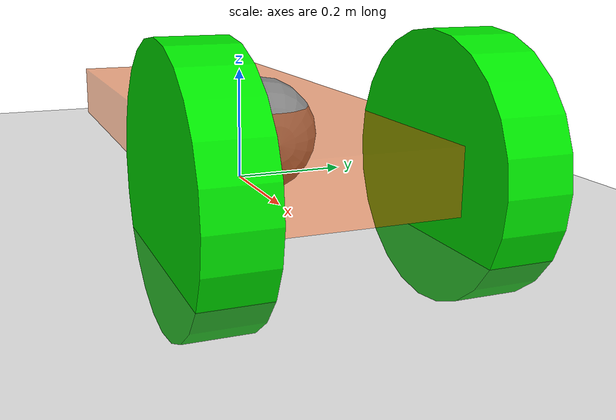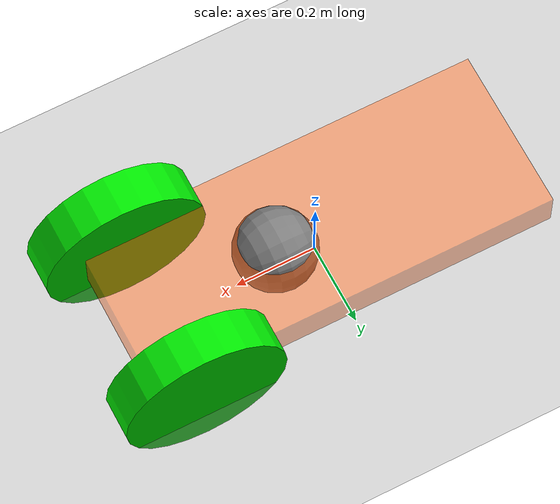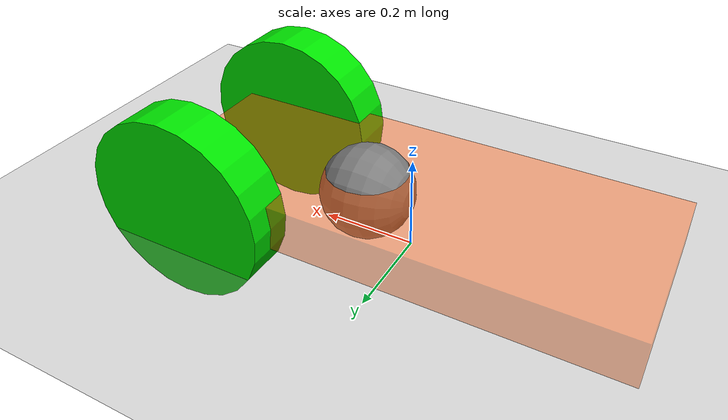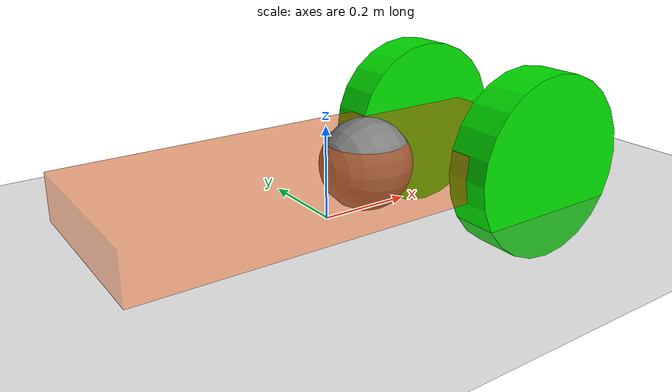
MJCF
<mujoco>
  <option gravity="0 0 -9.81"/>
  <asset>
    <material name="floor" texture="checks1" texrepeat="5 5" texuniform="true"/>
    <texture name="checks1" builtin="checker" type="2d" width="256" height="256" rgb1="1 1 1" rgb2="0 0 0"/>
  </asset>
  <worldbody>
    <light diffuse=".5 .5 .5" pos="0 0 10" dir="0 0 -1"/>
    <geom type="plane" size="2 2 0.1" material="floor"/>
    <body name="chassis" pos="0 0 0.1" euler="0 90 0">
      <joint type="free"/>
      <geom type="box" size=".05 .2 .5" rgba=".9 .3 0 .5"/>
      <site name="marker" pos="0 0 0.1" size="0.1"/>
      <body name="left-tire" pos="0 .2 .4" euler="90 0 0">
        <joint name="wheel-left" type="hinge" axis="0 0 -1"/>
        <geom type="cylinder" size="0.2 0.05" rgba="0 .9 0 1"/>
      </body>
      <body name="right-tire" pos="0 -0.2 0.4" euler="90 0 0">
        <joint name="wheel-right" type="hinge" axis="0 0 -1"/>
        <geom type="cylinder" size="0.2 0.05" rgba="0 .9 0 1"/>
      </body>
    </body>
  </worldbody>
  <sensor>
    <framepos objtype="site" objname="marker"/>
  </sensor>
  <actuator>
    <velocity name="left-velocity-servo" joint="wheel-left" kv="100"/>
    <velocity name="right-velocity-servo" joint="wheel-right" kv="100"/>
  </actuator>
</mujoco>
